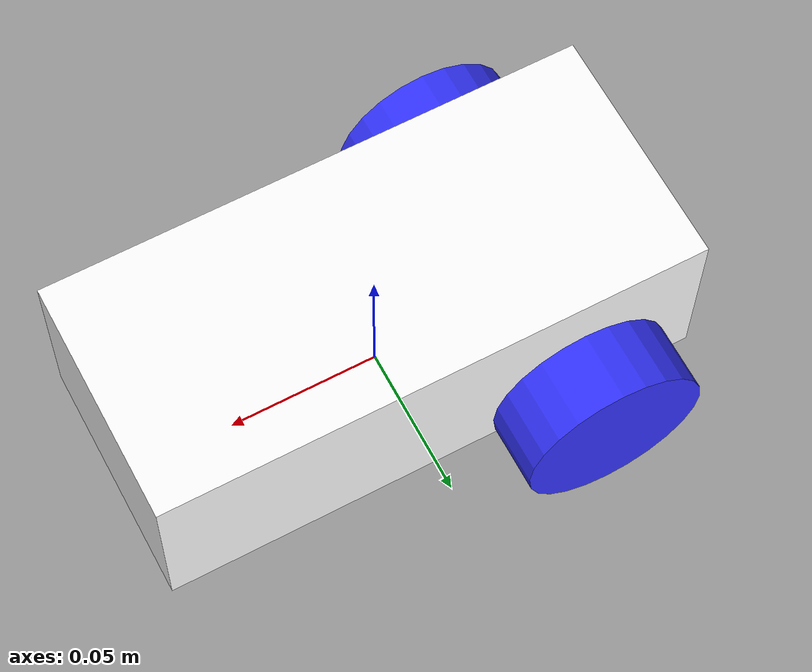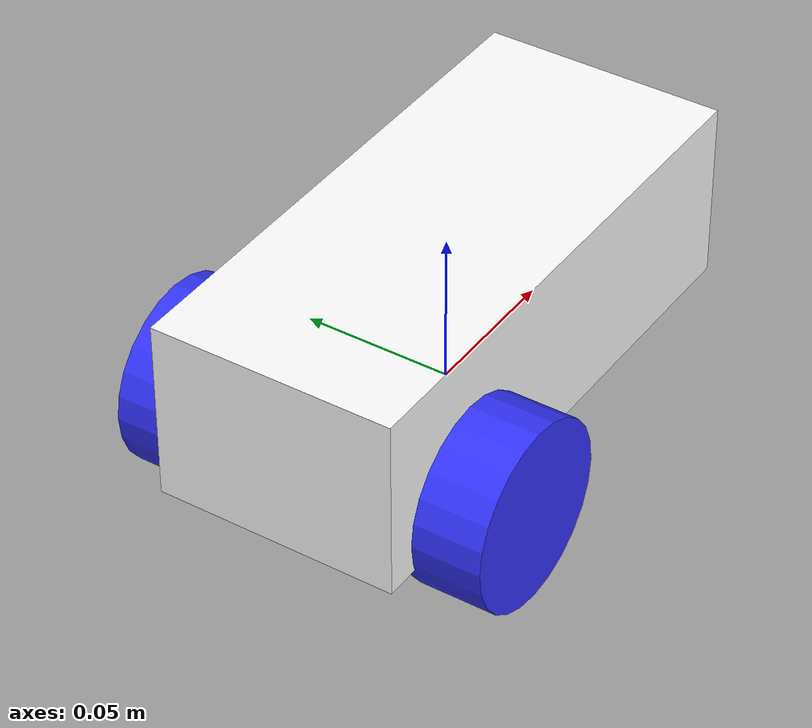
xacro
<?xml version="1.0"?>
<robot xmlns:xacro="http://www.ros.org/wiki/xacro"  name="robot">

    <xacro:include filename="robot_core_diff.xacro" />

    <xacro:include filename="ros2_control.xacro" />

</robot>

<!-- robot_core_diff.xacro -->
<robot xmlns:xacro="http://www.ros.org/wiki/xacro">

    <xacro:include filename="inertial_macros.xacro"/>

    <material name="white">
        <color rgba="1 1 1 1"/>
    </material>

    <material name="orange">
        <color rgba="1 0.3 0.1 1"/>
    </material>

    <material name="blue">
        <color rgba="0.2 0.2 1 1"/>
    </material>

    <material name="black">
        <color rgba="0 0 0 1"/>
    </material>

    <material name="red">
        <color rgba="1 0 0 1"/>
    </material>

    <!-- BASE LINK -->

    <link name="base_link">

    </link>

    <!-- CHASSIS LINK -->

    <joint name="chassis_joint" type="fixed">
        <parent link="base_link"/>
        <child link="chassis"/>
        <origin xyz="-0.09 0 0"/>
    </joint>

    <link name="chassis">
        <visual>
            <origin xyz="0.09 0 0.03" rpy="0 0 0"/>
            <geometry>
                <box size="0.18 0.08 0.06"/>
            </geometry>
            <material name="white"/>
        </visual>
        <collision>
            <origin xyz="0.09 0 0.03" rpy="0 0 0"/>
            <geometry>
                <box size="0.18 0.08 0.06"/>
            </geometry>
        </collision>
        <xacro:inertial_box mass="0.01" x="0.18" y="0.08" z="0.06">
            <origin xyz="0.09 0 0.03" rpy="0 0 0"/>
        </xacro:inertial_box>
    </link>

    <gazebo reference="chassis">
        <material>Gazebo/White</material>
    </gazebo>

    <!-- LEFT WHEEL LINK -->

    <joint name="left_wheel_joint" type="continuous">
        <parent link="chassis"/>
        <child link="left_wheel"/>
        <origin xyz="0.04 0.05 0.01" rpy="-${pi/2} 0 0"/>
        <axis xyz="0 0 1"/>
    </joint>

    <link name="left_wheel">
        <visual>
            <geometry>
                <cylinder radius="0.03" length="0.025"/>
            </geometry>
            <material name="blue"/>
        </visual>
        <collision>
            <geometry>
                <cylinder radius="0.03" length="0.025"/>
            </geometry>
        </collision>
        <xacro:inertial_cylinder mass="0.01" length="0.025" radius="0.03">
            <origin xyz="0 0 0" rpy="0 0 0"/>
        </xacro:inertial_cylinder>
    </link>

    <gazebo reference="left_wheel">
        <material>Gazebo/Blue</material>
    </gazebo>

    <!-- REAR RIGHT WHEEL LINK -->

    <joint name="right_wheel_joint" type="continuous">
        <parent link="chassis"/>
        <child link="right_wheel"/>
        <origin xyz="0.04 -0.05 0.01" rpy="${pi/2} 0 0"/>
        <axis xyz="0 0 -1"/>
    </joint>

    <link name="right_wheel">
        <visual>
            <geometry>
                <cylinder radius="0.03" length="0.025"/>
            </geometry>
            <material name="blue"/>
        </visual>
        <collision>
            <geometry>
                <cylinder radius="0.03" length="0.025"/>
            </geometry>
        </collision>
        <xacro:inertial_cylinder mass="0.01" length="0.025" radius="0.03">
            <origin xyz="0 0 0" rpy="0 0 0"/>
        </xacro:inertial_cylinder>
    </link>

    <gazebo reference="right_wheel">
        <material>Gazebo/Blue</material>
    </gazebo>

    <!-- FRONT CASTER WHEEL -->

    <joint name="caster_wheel_front_joint" type="fixed">
        <parent link="chassis"/>
        <child link="caster_wheel_front"/>
        <origin xyz="0.15 0 0.011" rpy="0 0 0"/>
    </joint>

    <link name="caster_wheel_front">
        <visual>
            <geometry>
                <sphere radius="0.03" />
            </geometry>
            <material name="black"/>
        </visual>
        <collision>
            <geometry>
                <sphere radius="0.03" />
            </geometry>
            <material name="black"/>
        </collision>
    </link>

    <gazebo reference="caster_wheel_front">
        <material>Gazebo/Black</material>
        <mu1 value="0.001"/>
        <mu2 value="0.001"/>
    </gazebo>

    <!-- REAR CASTER WHEEL -->

</robot>
